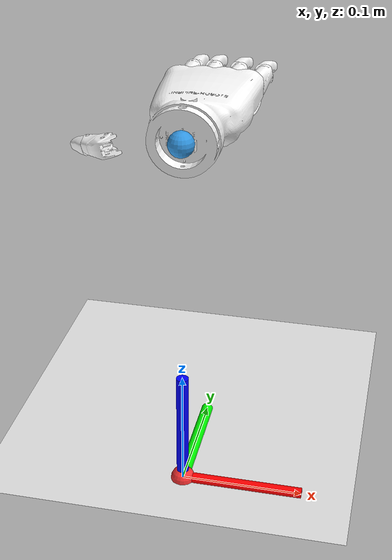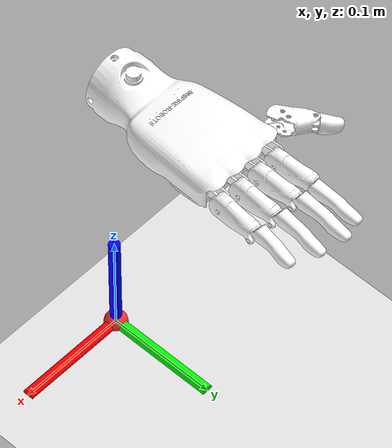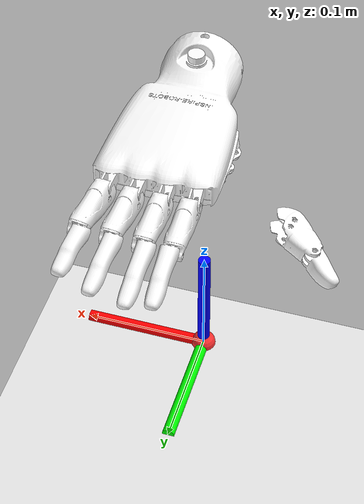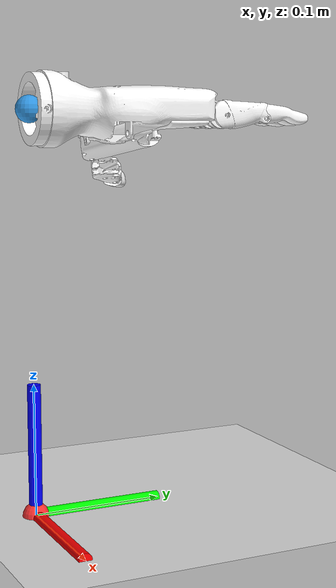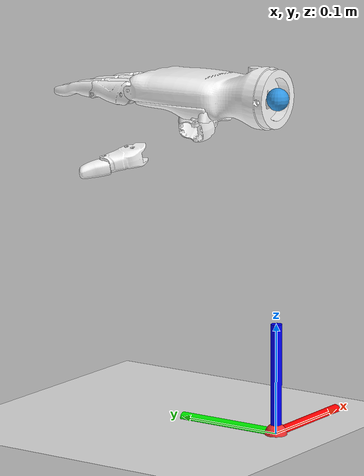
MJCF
<mujoco model="handright9253">
  <default>
    <!-- Enable self-collision on all geoms with softer contacts. -->
    <geom contype="1" conaffinity="1" group="1" solref="0.01 1" solimp="0.95 0.99 1e-5" friction="0.8 0.01 0.01"/>
    <!-- More damping/armature to stabilize position control on light links. -->
    <joint damping="0.5" armature="0.02" frictionloss="0.02"/>
  </default>
  <compiler angle="radian" meshdir="meshes/"/>
  <option gravity="0 0 0" timestep="0.001" integrator="implicit">
    <flag limit="enable"/>
  </option>

  <asset>
    <mesh name="base_link" content_type="model/stl" file="base_link.STL"/>
    <mesh name="Link3" content_type="model/stl" file="Link3.STL"/>
    <mesh name="Link4" content_type="model/stl" file="Link4.STL"/>
    <mesh name="Link13" content_type="model/stl" file="Link13.STL"/>
    <mesh name="Link14" content_type="model/stl" file="Link14.STL"/>
    <mesh name="Link23" content_type="model/stl" file="Link23.STL"/>
    <mesh name="Link24" content_type="model/stl" file="Link24.STL"/>
    <mesh name="Link33" content_type="model/stl" file="Link33.STL"/>
    <mesh name="Link34" content_type="model/stl" file="Link34.STL"/>
    <mesh name="Link43" content_type="model/stl" file="Link43.STL"/>
    <mesh name="Link44" content_type="model/stl" file="Link44.STL"/>
    <mesh name="Link47" content_type="model/stl" file="Link47.STL"/>
    <mesh name="Link48" content_type="model/stl" file="Link48.STL"/>
  </asset>

  <worldbody>
    <geom name="floor" type="plane" size="5 5 0.1" pos="0 0 0" rgba="0.9 0.9 0.9 1" contype="1" conaffinity="1" group="1"/>
    <light name="dome_light" pos="0 0 3" dir="0 0 -1" diffuse="0.8 0.8 0.8" specular="0.1 0.1 0.1" directional="false"/>
    <body name="tracker_marker" mocap="true">
      <geom name="tracker_marker_geom" type="sphere" size="0.01" rgba="1 0.2 0.2 1" contype="0" conaffinity="0"/>
      <geom name="tracker_axis_x" type="cylinder" size="0.002 0.03" pos="0.03 0 0" quat="0.70710678 0 0.70710678 0" rgba="1 0 0 1" contype="0" conaffinity="0"/>
      <geom name="tracker_axis_y" type="cylinder" size="0.002 0.03" pos="0 0.03 0" quat="0.70710678 -0.70710678 0 0" rgba="0 1 0 1" contype="0" conaffinity="0"/>
      <geom name="tracker_axis_z" type="cylinder" size="0.002 0.03" pos="0 0 0.03" rgba="0 0 1 1" contype="0" conaffinity="0"/>
    </body>
    <body name="human_frame" mocap="true">
      <geom name="human_origin" type="sphere" size="0.008" rgba="1 0.8 0.2 1" contype="0" conaffinity="0"/>
      <geom name="human_axis_x" type="cylinder" size="0.002 0.04" pos="0.04 0 0" quat="0.70710678 0 0.70710678 0" rgba="1 0.6 0 1" contype="0" conaffinity="0"/>
      <geom name="human_axis_y" type="cylinder" size="0.002 0.04" pos="0 0.04 0" quat="0.70710678 -0.70710678 0 0" rgba="0 0.8 1 1" contype="0" conaffinity="0"/>
      <geom name="human_axis_z" type="cylinder" size="0.002 0.04" pos="0 0 0.04" rgba="0.9 0.9 0 1" contype="0" conaffinity="0"/>
    </body>
    <body name="hand_mocap" mocap="true"/>
    <geom name="axis_x" type="cylinder" size="0.005 0.05" pos="0.05 0 0" quat="0.70710678 0 0.70710678 0" rgba="1 0 0 1" contype="0" conaffinity="0"/>
    <geom name="axis_y" type="cylinder" size="0.005 0.05" pos="0 0.05 0" quat="0.70710678 -0.70710678 0 0" rgba="0 1 0 1" contype="0" conaffinity="0"/>
    <geom name="axis_z" type="cylinder" size="0.005 0.05" pos="0 0 0.05" rgba="0 0 1 1" contype="0" conaffinity="0"/>
    <body name="hand_base" pos="0 0 0.3">
      <freejoint name="root_free"/>

      <geom name="base_root_marker" type="sphere" size="0.01" pos="0 0 0" rgba="0.2 0.6 0.9 1"/>
      <body name="hand_root" pos="0 0 0" quat="0.5 -0.5 -0.5 -0.5">
        <geom pos="0 0 0" quat="0.707107 -0.707107 0 0" type="mesh" rgba="1 1 1 1" mesh="base_link"/>
        <body name="Link3" pos="0.000285 -0.027269 0.1366" quat="-2.55162e-06 2.64228e-06 0.694658 0.71934">
        <inertial pos="0.0031774 0.017383 0.00090008" quat="0.491211 0.50867 -0.491172 0.508643" mass="0.0042403" diaginertia="6.9398e-07 6.62871e-07 2.10909e-07"/>
        <joint name="joint03" pos="0 0 0" axis="-0 -0 -1" range="0 2" actuatorfrcrange="-50 50"/>
        <geom type="mesh" rgba="1 1 1 1" mesh="Link3"/>
        <body name="Link4" pos="0.0070171 0.037468 -0.00215">
          <inertial pos="-0.0019697 0.019589 0.00305" quat="0.531152 0.466773 -0.531153 0.466773" mass="0.0045683" diaginertia="7.8179e-07 7.72465e-07 8.47212e-08"/>
          <joint name="joint34" pos="0 0 0" axis="-0 -0 -1" range="0 1.7" actuatorfrcrange="-50 50"/>
          <geom type="mesh" rgba="1 1 1 1" mesh="Link4"/>
        </body>
        </body>
      <body name="Link13" pos="0.000285 -0.00795 0.1371" quat="-2.59735e-06 2.59735e-06 0.707107 0.707107">
        <inertial pos="0.0030737 0.017402 0.00090013" quat="0.489693 0.510131 -0.489653 0.510105" mass="0.0042403" diaginertia="6.9397e-07 6.62865e-07 2.10915e-07"/>
        <joint name="joint013" pos="0 0 0" axis="0 0 -1" range="-2 2" actuatorfrcrange="-50 50"/>
        <geom type="mesh" rgba="1 1 1 1" mesh="Link13"/>
        <body name="Link14" pos="0.0067937 0.037509 -0.00215">
          <inertial pos="-0.001921 0.020796 0.00305" quat="0.531626 0.466147 -0.531705 0.466229" mass="0.0050396" diaginertia="9.8384e-07 9.73279e-07 9.14014e-08"/>
        <joint name="joint1314" pos="0 0 0" axis="-0 -0 -1" range="0 1.7" actuatorfrcrange="-50 50"/>
          <geom type="mesh" rgba="1 1 1 1" mesh="Link14"/>
        </body>
      </body>
      <body name="Link23" pos="0.000285 0.011284 0.13681" quat="-2.66445e-06 2.52847e-06 -0.725374 -0.688355">
        <inertial pos="0.0030737 0.017402 0.00090015" quat="0.489691 0.510129 -0.489655 0.510107" mass="0.0042403" diaginertia="6.9397e-07 6.62865e-07 2.10915e-07"/>
        <joint name="joint023" pos="0 0 0" axis="-0 -0 -1" range="0 2" actuatorfrcrange="-50 50"/>
        <geom type="mesh" rgba="1 1 1 1" mesh="Link23"/>
        <body name="Link24" pos="0.0067937 0.037509 -0.00215">
          <inertial pos="-0.0021753 0.019567 0.00305" quat="0.528695 0.469554 -0.528695 0.469554" mass="0.0045683" diaginertia="7.8177e-07 7.72448e-07 8.4722e-08"/>
          <joint name="joint2324" pos="0 0 0" axis="-0 -0 -1" range="0 1.7" actuatorfrcrange="-50 50"/>
          <geom type="mesh" rgba="1 1 1 1" mesh="Link24"/>
        </body>
      </body>
      <body name="Link33" pos="0.000285 0.030477 0.13551" quat="-2.72972e-06 2.45785e-06 -0.743145 -0.669131">
        <inertial pos="0.0030737 0.017402 0.00090014" quat="0.489692 0.510129 -0.489654 0.510107" mass="0.0042403" diaginertia="6.9398e-07 6.62865e-07 2.10915e-07"/>
        <joint name="joint033" pos="0 0 0" axis="-0 -0 -1" range="0 2" actuatorfrcrange="-100 100"/>
        <geom type="mesh" rgba="1 1 1 1" mesh="Link33"/>
        <body name="Link34" pos="0.0067937 0.037509 -0.00215">
          <inertial pos="-0.0024748 0.016203 0.0030531" quat="0.528862 0.47398 -0.524799 0.469291" mass="0.0035996" diaginertia="4.4867e-07 4.43723e-07 6.56538e-08"/>
          <joint name="joint3334" pos="0 0 0" axis="-0 -0 -1" range="0 1.7" actuatorfrcrange="-50 50"/>
          <geom type="mesh" rgba="1 1 1 1" mesh="Link34"/>
        </body>
      </body>
      <body name="Link43" pos="-0.02296 -0.02045 0.05885" quat="0.707105 1.30815e-06 1.2892e-06 0.707108">
        <inertial pos="-0.0078715 0.0065154 0.00388" quat="0.515015 0.680854 0.408023 0.323596" mass="0.0018869" diaginertia="8.66026e-08 6.8732e-08 4.94194e-08"/>
        <joint name="joint043" pos="0 0 0" axis="0 0 -1" range="-2 2" actuatorfrcrange="-50 50"/>
        <geom type="mesh" rgba="1 1 1 1" mesh="Link43"/>
        <body name="Link44" pos="-0.012782 0.013348 0.0022" quat="0.0996843 0.0996847 0.700046 0.700044">
          <inertial pos="0.021932 0.012785 -0.0047886" quat="-0.254484 0.660712 0.251903 0.659729" mass="0.0066075" diaginertia="2.78601e-06 2.43937e-06 8.64621e-07"/>
          <joint name="joint4344" pos="0 0 0" axis="-0 -0 1" range="0 0.5" actuatorfrcrange="-50 50"/>
          <geom type="mesh" rgba="1 1 1 1" mesh="Link44"/>
          <body name="Link47" pos="0.05507 0.025553 -0.00355" quat="1.34924e-11 3.67321e-06 1 3.67321e-06">
            <inertial pos="-0.0060688 0.011295 0.00099972" quat="0.307389 0.636718 -0.307548 0.636802" mass="0.0037847" diaginertia="4.6531e-07 4.48089e-07 2.45661e-07"/>
            <joint name="joint4447" pos="0 0 0" axis="0 0 -1" range="-2 2" actuatorfrcrange="-50 50"/>
            <geom type="mesh" rgba="1 1 1 1" mesh="Link47"/>
            <body name="Link48" pos="-0.016763 0.023079 -0.00255">
              <inertial pos="-0.0092888 0.0049529 0.0035533" quat="0.266292 0.655966 -0.262808 0.655537" mass="0.0033441" diaginertia="2.0026e-07 1.95247e-07 8.1593e-08"/>
              <joint name="joint4748" pos="0 0 0" axis="0 0 -1" range="0 1.2" actuatorfrcrange="-50 50"/>
              <geom type="mesh" rgba="1 1 1 1" mesh="Link48"/>
            </body>
          </body>
        </body>
      </body>
      </body>
    </body>
</worldbody>

  <equality>
    <weld name="hand_mocap_weld" body1="hand_mocap" body2="hand_base"
          relpose="0 0 0 1 0 0 0"
          solref="0.01 1" solimp="0.9 0.95 0.001"/>
  </equality>

  <contact>
    <exclude body1="hand_root" body2="Link3"/>
    <exclude body1="Link3" body2="Link4"/>
    <exclude body1="hand_root" body2="Link13"/>
    <exclude body1="Link13" body2="Link14"/>
    <exclude body1="hand_root" body2="Link23"/>
    <exclude body1="Link23" body2="Link24"/>
    <exclude body1="hand_root" body2="Link33"/>
    <exclude body1="Link33" body2="Link34"/>
    <exclude body1="hand_root" body2="Link43"/>
    <exclude body1="Link43" body2="Link44"/>
    <exclude body1="Link44" body2="Link47"/>
    <exclude body1="Link47" body2="Link48"/>
  </contact>

  <actuator>
    <position name="index_joint_0" joint="joint03" ctrlrange="0 1.2" kp="10" kv="2" ctrllimited="true"/>
    <position name="index_joint_1" joint="joint34" ctrlrange="0 1.7" kp="10" kv="2" ctrllimited="true"/>
    <position name="middle_joint_0" joint="joint013" ctrlrange="0 1.2" kp="10" kv="2" ctrllimited="true"/>
    <position name="middle_joint_1" joint="joint1314" ctrlrange="0 1.7" kp="10" kv="2" ctrllimited="true"/>
    <position name="ring_joint_0" joint="joint023" ctrlrange="0 1.2" kp="10" kv="2" ctrllimited="true"/>
    <position name="ring_joint_1" joint="joint2324" ctrlrange="0 1.7" kp="10" kv="2" ctrllimited="true"/>
    <position name="little_joint_0" joint="joint033" ctrlrange="0 1.2" kp="10" kv="2" ctrllimited="true"/>
    <position name="little_joint_1" joint="joint3334" ctrlrange="0 1.7" kp="10" kv="2" ctrllimited="true"/>
    <position name="thumb_joint_0" joint="joint043" ctrlrange="0 1.2" kp="10" kv="2" ctrllimited="true"/>
    <position name="thumb_joint_1" joint="joint4344" ctrlrange="0 0.5" kp="10" kv="2" ctrllimited="true"/>
    <position name="thumb_joint_2" joint="joint4447" ctrlrange="0 0.5" kp="10" kv="2" ctrllimited="true"/>
    <position name="thumb_joint_3" joint="joint4748" ctrlrange="0 0.5" kp="10" kv="2" ctrllimited="true"/>
  </actuator>

  <sensor>
    <framepos name="tracker_pos" objtype="body" objname="tracker_marker"/>
    <framequat name="tracker_quat" objtype="body" objname="tracker_marker"/>
  </sensor>
</mujoco>
